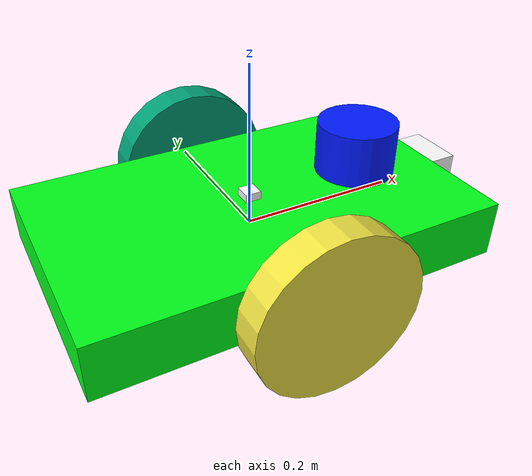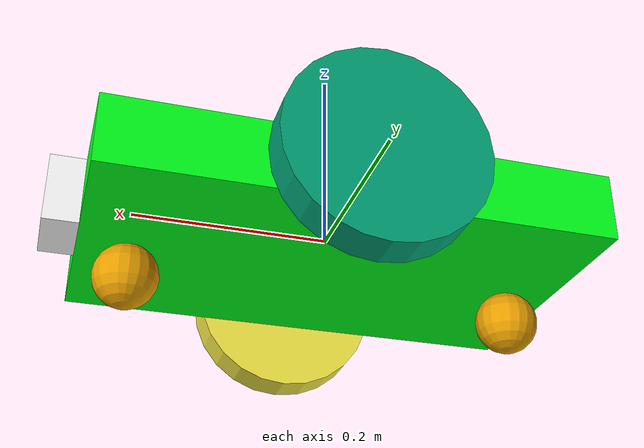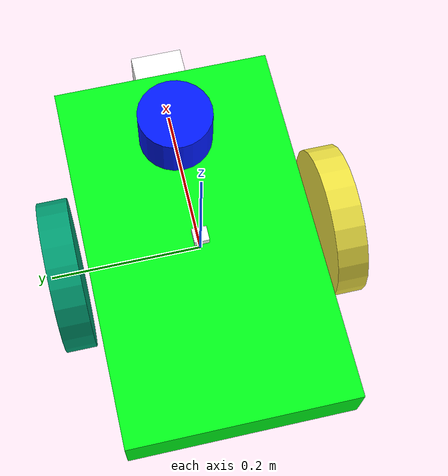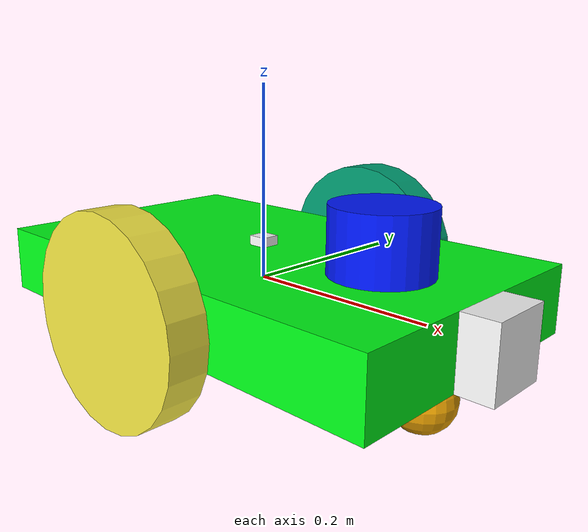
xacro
<?xml version="1.0" encoding="utf-8"?>
<robot name ="m2wr" xmlns:xacro="http://www.ros.org/wiki/xacro">

    <xacro:include filename="$(find ddr_robot)/urdf/materials.xacro"/>
    <xacro:include filename="$(find ddr_robot)/urdf/m2wr.gazebo"/>
    <xacro:include filename="$(find ddr_robot)/urdf/macros.xacro"/>
    <!-- robot_chassis -->
    <link name="link_chassis">
        <pose>0 0 0 0 0 0</pose>
        <inertial>
            <mass value="1"/>
            <origin rpy = "0 0 0" xyz = "0 0 0"/>
            <inertia ixx = "0.007908" ixy="0" ixz="0" iyy="0.02124" iyz="0" izz="0.02124"/>
        </inertial>

        <collision name="collision_chassis">
            <geometry>
                <box size="0.5 0.3 0.07"/>
            </geometry>
        </collision>
        <visual>
            <origin rpy="0 0 0" xyz="0 0 0"/>
            <geometry>
                <box size="0.5 0.3 0.07"/>
            </geometry>
            <material name="">
                <color rgba="0 1 0.1 1" />
            </material>
        </visual>
        <!-- caster_wheel front-->
        <collision name="caster_front_collision">
            <origin rpy="0 0 0" xyz="0.2 0 -0.0675"/>
            <geometry>
                <sphere radius="0.0325"/>
            </geometry>
            <surface>
                <friction>
                    <ode>
                        <mu>0</mu>
                        <mu2>0</mu2>
                        <slip1>1.0</slip1>
                        <slip2>1.0</slip2>
                    </ode>
                </friction>
            </surface>
        </collision>
        <visual name="caster_front_visual">
            <origin rpy="0 0 0" xyz="0.2 0 -0.0675"/>
            <geometry>
                <sphere radius="0.0325"/>
            </geometry>
        </visual>
         <!-- caster_wheel rare -->
        <collision name="caster_front_collision">
            <origin rpy="0 0 0" xyz="-0.2 0 -0.0675"/>
            <geometry>
                <sphere radius="0.0325"/>
            </geometry>
            <surface>
                <friction>
                    <ode>
                        <mu>0</mu>
                        <mu2>0</mu2>
                        <slip1>1.0</slip1>
                        <slip2>1.0</slip2>
                    </ode>
                </friction>
            </surface>
        </collision>
        <visual name="caster_front_visual">
            <origin rpy="0 0 0" xyz="-0.2 0 -0.0675"/>
            <geometry>
                <sphere radius="0.0325"/>
            </geometry>
        </visual>
    </link>

    <!-- Laser_Sensor -->
    <link name="sensor_laser">

        <inertial>
            <mass value="0.1"/>
            <origin rpy = "0 0 0" xyz = "0 0 0"/>
            <xacro:cylinder_inertia mass="0.1" r="0.05" l="0.1"/>
        </inertial>

        <collision name="collision_chassis">
            <geometry>
                <cylinder radius="0.05" length="0.1"/>
            </geometry>
        </collision>
        <visual>
            <origin rpy="0 0 0" xyz="0 0 0"/>
            <geometry>
                <cylinder radius="0.05" length="0.1"/>
            </geometry>
            <material name="">
                <color rgba="0 0.1 1 1" />
            </material>
        </visual>
    </link>
    <!-- Laser_Sensor_joint -->
    <joint name="joint_sensor_laser" type="fixed">
        <origin xyz="0.15 0.0 0.05" rpy="0.0 0.0 0.0"/>
        <parent link="link_chassis"/>
        <child link="sensor_laser"/>
    </joint>

    <!-- Wheel -->
    <xacro:link_wheel name="link_right_wheel" />
    <xacro:link_wheel name="link_left_wheel" />
    <!-- Wheel_joints -->
    <xacro:link_joint name="joint_right_wheel" child="link_right_wheel" origin_xyz="0 0.18 0" />
    <xacro:link_joint name="joint_left_wheel" child="link_left_wheel" origin_xyz="0 -0.18 0" />

    <!-- Transmission -->
    <xacro:transmission_tag name="right" joint_name="joint_right_wheel" />
    <xacro:transmission_tag name="left" joint_name="joint_left_wheel" />

    <!--Camera box -->
    <link name="link_camera">
        <pose>0 0 0 0 0 0</pose>
        <inertial>
            <mass value="0.01"/>
            <origin rpy = "0 0 0" xyz = "0 0 0"/>
            <inertia ixx = "0.000008166" ixy="0" ixz="0" iyy="0.000008166" iyz="0" izz="0.000008166"/>
        </inertial>

        <collision name="collision_camera">
            <geometry>
                <box size="0.035 0.07 0.07"/>
            </geometry>
        </collision>
        <visual>
            <origin rpy="0 0 0" xyz="0 0 0"/>
            <geometry>
                <box size="0.035 0.07 0.07"/>
            </geometry>
            <material name="">
                <color rgba="1 1 1 1" />
            </material>

        </visual>
    </link>

    <!-- camera_joint -->
    <joint name="joint_camera" type="fixed">
        <origin rpy="0 0 0" xyz="0.2675 0 0"/>
        <child link="link_camera"/>
        <parent link="link_chassis"/>
    </joint>

    <!--IMU Sensor box -->
    <link name="link_IMU">
        <pose>0 0 0 0 0 0</pose>
        <inertial>
            <mass value="0.01"/>
            <origin rpy = "0 0 0" xyz = "0 0 0"/>
            <inertia ixx = "0.00000083" ixy="0" ixz="0" iyy="0.000000416" iyz="0" izz="0.00000108"/>
        </inertial>

        <collision name="collision_imu">
            <geometry>
                <box size="0.02 0.02 0.01"/>
            </geometry>
        </collision>
        <visual>
            <origin rpy="0 0 0" xyz="0 0 0"/>
            <geometry>
                <box size="0.02 0.02 0.01"/>
            </geometry>
            <material name="">
                <color rgba="1 1 1 1" />
            </material>

        </visual>
    </link>

    <!-- IMU Sensor_joint -->
    <joint name="joint_IMU" type="fixed">
        <origin rpy="0 0 0" xyz="0 0 0.04"/>
        <parent link="link_chassis"/>
        <child link="link_IMU"/>
    </joint>

</robot>

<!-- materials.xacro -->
<robot>
    <material name="black">
        <color rgba="0.0 0.0 0.0 1"/>
    </material>
    <material name="blue">
        <color rgba="0 0 1.0 1"/>
    </material>
    <material name="green">
        <color rgba="0 0.8 0.0 1"/>
    </material>
    <material name="gray">
        <color rgba="0.2 0.2 0.2 1"/>
    </material>
    <material name="orange">
        <color rgba="1.0 0.4235294 0.0392156 1"/>
    </material>
    <material name="brown">
        <color rgba="0.87058823 0.8117647 0.764705882 1"/>
    </material>
    <material name="red">
        <color rgba="0.80078125 0.12890625 0.1328125 1"/>
    </material>
    <material name="white">
        <color rgba="1.0 1.0 1.0 1"/>
    </material>
</robot>

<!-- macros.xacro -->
<robot>
    <macro name="link_wheel" params="name">
        <link name = "${name}">
            <inertial>
                <mass value="0.5"/>
                <origin rpy = "0 0 0" xyz = "0 0 0"/>
                <inertia ixx = "0.00131667" ixy="0" ixz="0" iyy="0.0025" iyz="0" izz="0.00131667"/>
            </inertial>

            <collision name="${name}_collision">
                <origin rpy = "0 1.5707 1.5707" xyz = "0 0 0"/>
                <geometry>
                    <cylinder length="0.04" radius="0.1"/>
                </geometry>
            </collision>
            <visual name="${name}_visual">
                <origin rpy = "0 1.5707 1.5707" xyz = "0 0 0"/>
                <geometry>
                    <cylinder length="0.04" radius="0.1"/>
                </geometry>
                <meterial name="blue"/>
            </visual>
            <surface>
                <friction>
                    <ode>
                        <mu1>1.2</mu1>
                        <mu2>1.2</mu2>
                        <kp>1e15</kp>
                        <kd>1e13</kd>
                    </ode>
                </friction>
                <bounce>
                    <restitution_coefficient>0.01</restitution_coefficient>
                    <threshold>0</threshold>
                </bounce>
                <contact>
                    <ode>
                        <max_vel>10</max_vel>
                    </ode>
                </contact>
            </surface>
        </link>
    </macro>

    <macro name="link_joint" params="name child origin_xyz">
        <joint name="${name}" type="continuous">
            <origin rpy="0 0 0" xyz="${origin_xyz}"/>
            <child link="${child}"/>
            <parent link="link_chassis"/>
            <axis rpy="0 0 0" xyz="0 1 0"/>
            <limit effort="10000" velocity="1000"/>
            <joint_properties damping="0.01" friction="0.001"/>
        </joint>
    </macro>

    <macro name="transmission_tag" params="name joint_name">
        <transmission name="${name}">
            <type>transmission_interface/SimpleTransmission</type>
            <joint name="${joint_name}">
                <hardwareInterface>EffortJointInterface</hardwareInterface>
            </joint>
            <actuator name="${name}_motor">
                <hardwareInterface>EffortJointInterface</hardwareInterface>
                <mechanicalReduction>1</mechanicalReduction>
            </actuator>
        </transmission>

    </macro>

    <macro name="cylinder_inertia" params="mass r l">
        <inertia ixx="${mass*(3*r*r+l*l)/12}" ixy="0" ixz="0"
                 iyy="${mass*(3*r*r+l*l)/12}" iyz="0"
                 izz="${mass*(r*r)/2}"/>
    </macro>

</robot>
